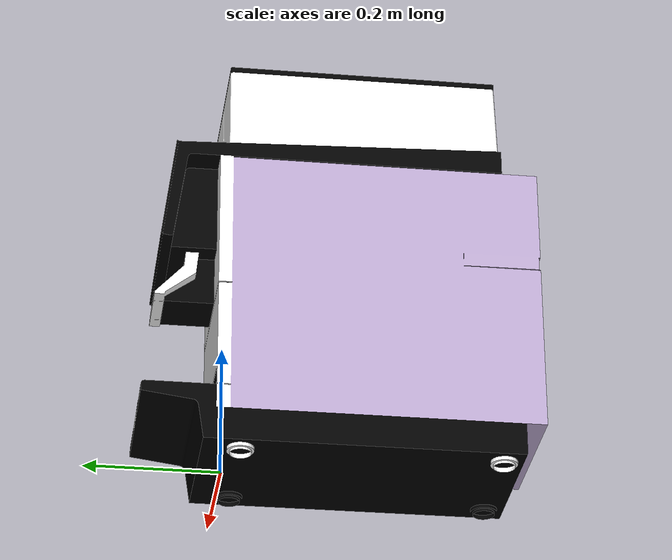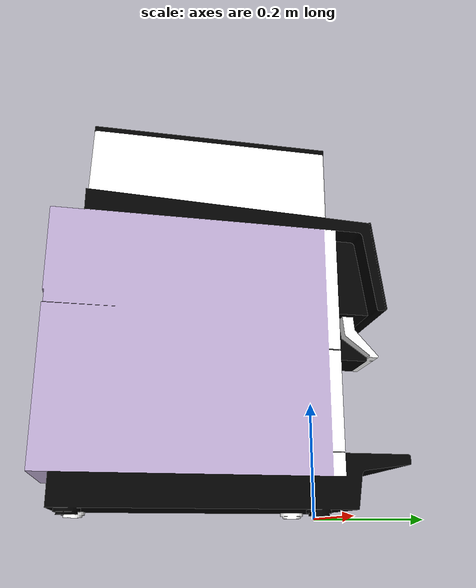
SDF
<?xml version="1.0" ?>
<sdf version="1.5">
  <model name="coffee_machine">
    <static>true</static>
    <pose>0 0 0 0 0 0</pose>
    <link name="body">
      <inertial>
        <mass>5</mass>
        <inertia>
          <ixx>1.0</ixx>
          <ixy>0.0</ixy>
          <iyy>1.0</iyy>
          <ixz>0.0</ixz>
          <iyz>0.0</iyz>
          <izz>1.0</izz>
        </inertia>
        <pose>0 0 0 0 0 0</pose>
      </inertial>
      <collision name="collision">
        <geometry>
          <mesh>
            <uri>model://coffee_machine/meshes/cafeteria.dae</uri>
          </mesh>
        </geometry>
      </collision>
      <visual name="visual">
        <geometry>
          <mesh>
            <uri>model://coffee_machine/meshes/cafeteria.dae</uri>
          </mesh>
        </geometry>
      </visual>
    </link>
  </model>
</sdf>
